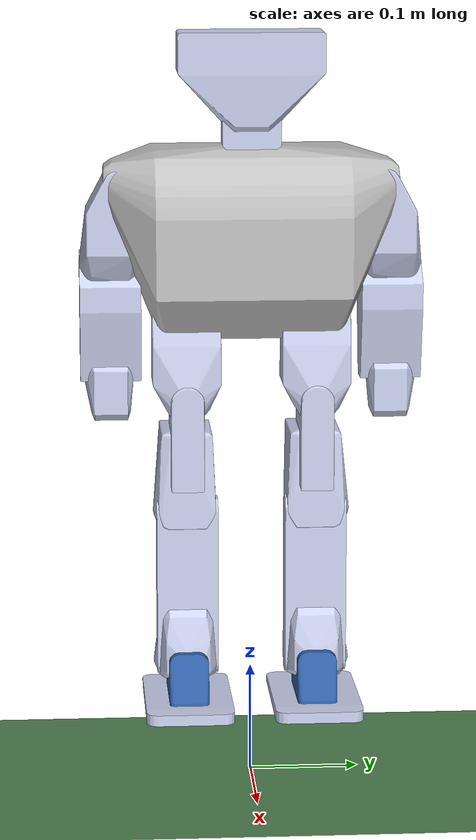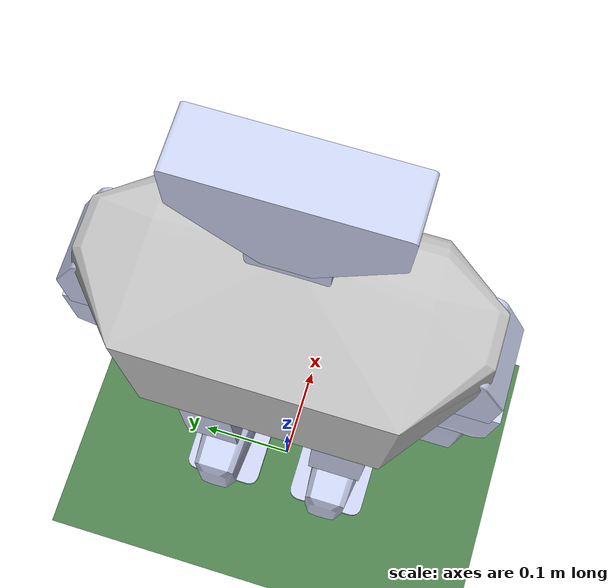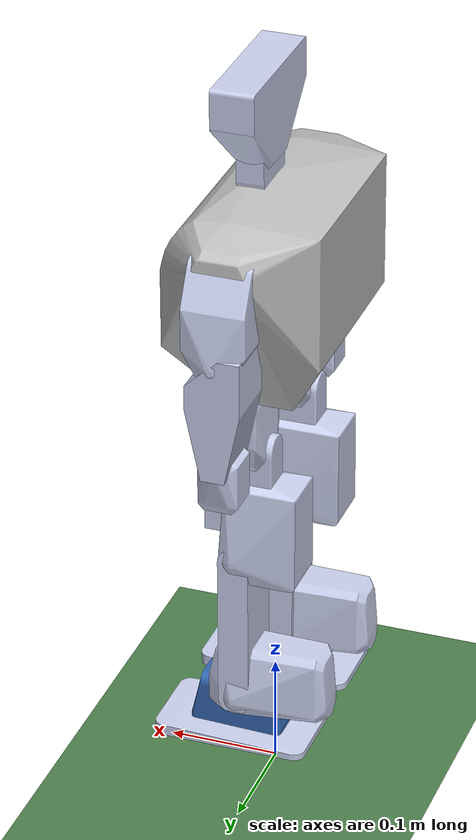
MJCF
<?xml version='1.0' encoding='utf-8'?>
<mujoco model="kubot26_pkgs">
  <compiler angle="radian" />
  <asset>
    <mesh name="base_link_collision" content_type="model/stl" file="/home/jeonghwan/kubot26_ws/src/kubot26_pkgs/meshes/collision/base_link_collision.STL" />
    <mesh name="L_Hip_pitch_collision" content_type="model/stl" file="/home/jeonghwan/kubot26_ws/src/kubot26_pkgs/meshes/collision/L_Hip_pitch_collision.STL" />
    <mesh name="L_Hip_roll_collision" content_type="model/stl" file="/home/jeonghwan/kubot26_ws/src/kubot26_pkgs/meshes/collision/L_Hip_roll_collision.STL" />
    <mesh name="L_Hip_yaw_collision" content_type="model/stl" file="/home/jeonghwan/kubot26_ws/src/kubot26_pkgs/meshes/collision/L_Hip_yaw_collision.STL" />
    <mesh name="L_Knee_pitch_collision" content_type="model/stl" file="/home/jeonghwan/kubot26_ws/src/kubot26_pkgs/meshes/collision/L_Knee_pitch_collision.STL" />
    <mesh name="L_Ankle_pitch_collision" content_type="model/stl" file="/home/jeonghwan/kubot26_ws/src/kubot26_pkgs/meshes/collision/L_Ankle_pitch_collision.STL" />
    <mesh name="L_Ankle_roll_collision" content_type="model/stl" file="/home/jeonghwan/kubot26_ws/src/kubot26_pkgs/meshes/collision/L_Ankle_roll_collision.STL" />
    <mesh name="L_Foot_collision" content_type="model/stl" file="/home/jeonghwan/kubot26_ws/src/kubot26_pkgs/meshes/collision/L_Foot_collision.STL" />
    <mesh name="R_Hip_pitch_collision" content_type="model/stl" file="/home/jeonghwan/kubot26_ws/src/kubot26_pkgs/meshes/collision/R_Hip_pitch_collision.STL" />
    <mesh name="R_Hip_roll_collision" content_type="model/stl" file="/home/jeonghwan/kubot26_ws/src/kubot26_pkgs/meshes/collision/R_Hip_roll_collision.STL" />
    <mesh name="R_Hip_yaw_collision" content_type="model/stl" file="/home/jeonghwan/kubot26_ws/src/kubot26_pkgs/meshes/collision/R_Hip_yaw_collision.STL" />
    <mesh name="R_Knee_pitch_collision" content_type="model/stl" file="/home/jeonghwan/kubot26_ws/src/kubot26_pkgs/meshes/collision/R_Knee_pitch_collision.STL" />
    <mesh name="R_Ankle_pitch_collision" content_type="model/stl" file="/home/jeonghwan/kubot26_ws/src/kubot26_pkgs/meshes/collision/R_Ankle_pitch_collision.STL" />
    <mesh name="R_Ankle_roll_collision" content_type="model/stl" file="/home/jeonghwan/kubot26_ws/src/kubot26_pkgs/meshes/collision/R_Ankle_roll_collision.STL" />
    <mesh name="R_Foot_collision" content_type="model/stl" file="/home/jeonghwan/kubot26_ws/src/kubot26_pkgs/meshes/collision/R_Foot_collision.STL" />
    <mesh name="L_Shoulder_roll_collision" content_type="model/stl" file="/home/jeonghwan/kubot26_ws/src/kubot26_pkgs/meshes/collision/L_Shoulder_roll_collision.STL" />
    <mesh name="L_Elbow_pitch_collision" content_type="model/stl" file="/home/jeonghwan/kubot26_ws/src/kubot26_pkgs/meshes/collision/L_Elbow_pitch_collision.STL" />
    <mesh name="L_Hand_pitch_collision" content_type="model/stl" file="/home/jeonghwan/kubot26_ws/src/kubot26_pkgs/meshes/collision/L_Hand_pitch_collision.STL" />
    <mesh name="R_Shoulder_roll_collision" content_type="model/stl" file="/home/jeonghwan/kubot26_ws/src/kubot26_pkgs/meshes/collision/R_Shoulder_roll_collision.STL" />
    <mesh name="R_Elbow_pitch_collision" content_type="model/stl" file="/home/jeonghwan/kubot26_ws/src/kubot26_pkgs/meshes/collision/R_Elbow_pitch_collision.STL" />
    <mesh name="R_Hand_pitch_collision" content_type="model/stl" file="/home/jeonghwan/kubot26_ws/src/kubot26_pkgs/meshes/collision/R_Hand_pitch_collision.STL" />
    <mesh name="Neck_yaw_collision" content_type="model/stl" file="/home/jeonghwan/kubot26_ws/src/kubot26_pkgs/meshes/collision/Neck_yaw_collision.STL" />
    <mesh name="Head_pitch_collision" content_type="model/stl" file="/home/jeonghwan/kubot26_ws/src/kubot26_pkgs/meshes/collision/Head_pitch_collision.STL" />
  </asset>
  <worldbody>
    <body name="base_link" pos="0 0 0.5">
      <freejoint name="root" />
      <inertial pos="-0.0010724 1.5417E-05 0.0049666" mass="2.308868" fullinertia="0.011887 0.006649 0.009457 0.000000 0.000223 -0.000002" />
      <geom pos="0.00048 1.9e-05 4e-05" quat="1 0 0 0" type="mesh" rgba="0.75294 0.75294 0.75294 1" mesh="base_link_collision" />
      <body name="L_Hip_pitch" pos="0.0084798 0.058519 -0.067335">
        <inertial pos="4.5899e-05 0.00015259 -0.052562" quat="0.92388 0 0.382683 0" mass="0.208" diaginertia="0.000501 0.0005 0.000499" />
        <joint name="L_Hip_pitch_joint" range="-1.5 0.15" actuatorfrcrange="-8.4 8.4" damping="0.5" frictionloss="0.1" axis="0 1 0" />
        <geom type="mesh" rgba="0.79216 0.81961 0.93333 1" mesh="L_Hip_pitch_collision" />
        <body name="L_Hip_roll" pos="0 0.0002 -0.0756">
          <inertial pos="0.0095362 2.8384e-08 -0.036432" quat="0.92388 0 0.382683 0" mass="0.03741" diaginertia="0.000507 0.0005 0.000493" />
          <joint name="L_Hip_roll_joint" range="-1.55 1.55" actuatorfrcrange="-8.4 8.4" damping="0.5" frictionloss="0.1" axis="1 0 0" />
          <geom type="mesh" rgba="0.79216 0.81961 0.93333 1" mesh="L_Hip_roll_collision" />
          <body name="L_Hip_yaw" pos="0.0001 0 -0.0531">
            <inertial pos="-0.019742 5.0279e-05 -0.026799" quat="0.922094 0.0574075 0.381944 0.023779" mass="0.35315" diaginertia="0.000508062 0.0005 0.000491938" />
            <joint name="L_Hip_yaw_joint" range="-1.6 1.6" actuatorfrcrange="-6 6" damping="0.5" frictionloss="0.1" />
            <geom type="mesh" rgba="0.79216 0.81961 0.93333 1" mesh="L_Hip_yaw_collision" />
            <body name="L_Knee_pitch" pos="0.0005 0 -0.0515">
              <inertial pos="0 0.0001 -0.069133" mass="0.04" diaginertia="0.0005 0.0005 0.0005" />
              <joint name="L_Knee_pitch_joint" range="-2.25 1.95" actuatorfrcrange="-8.4 8.4" damping="0.5" frictionloss="0.1" axis="0 1 0" />
              <geom type="mesh" rgba="0.79216 0.81961 0.93333 1" mesh="L_Knee_pitch_collision" />
              <body name="L_Ankle_pitch" pos="0 0.0001 -0.142">
                <inertial pos="-0.026062 5.2579e-05 0.015668" quat="0.918283 0.0420589 0.380365 0.101539" mass="0.383379" diaginertia="0.000506317 0.000499683 0.000494" />
                <joint name="L_Ankle_pitch_joint" range="-1.55 1.55" actuatorfrcrange="-8.4 8.4" damping="0.5" frictionloss="0.1" axis="0 1 0" />
                <geom type="mesh" rgba="0.79216 0.81961 0.93333 1" mesh="L_Ankle_pitch_collision" />
                <body name="L_Ankle_roll" pos="-0.0562 0 0">
                  <inertial pos="0.0597291 0 -0.0318913" quat="0.996951 0 -0.0780304 0" mass="0.11111" diaginertia="0.00101292 0.00101269 0.000999764" />
                  <joint name="L_Ankle_roll_joint" range="-1.55 1.55" actuatorfrcrange="-8.4 8.4" damping="0.5" frictionloss="0.1" axis="-1 0 0" />
                  <geom type="mesh" rgba="0.2 0.4 0.69804 1" mesh="L_Ankle_roll_collision" />
                  <geom pos="0.0557 -0.0001 -0.042" quat="1 0 0 0" type="mesh" rgba="0.79216 0.81961 0.93333 1" mesh="L_Foot_collision" />
                </body>
              </body>
            </body>
          </body>
        </body>
      </body>
      <body name="R_Hip_pitch" pos="0.0084798 -0.058481 -0.067335">
        <inertial pos="4.5899e-05 -4.7411e-05 -0.052562" quat="0.92388 0 0.382683 0" mass="0.208" diaginertia="0.000501 0.0005 0.000499" />
        <joint name="R_Hip_pitch_joint" range="-0.15 1.5" actuatorfrcrange="-8.4 8.4" damping="0.5" frictionloss="0.1" axis="0 -1 0" />
        <geom type="mesh" rgba="0.79216 0.81961 0.93333 1" mesh="R_Hip_pitch_collision" />
        <body name="R_Hip_roll" pos="0 0 -0.0756">
          <inertial pos="0.0095362 2.8384e-08 -0.036432" quat="0.92388 0 0.382683 0" mass="0.03741" diaginertia="0.000507 0.0005 0.000493" />
          <joint name="R_Hip_roll_joint" range="-1.55 1.55" actuatorfrcrange="-8.4 8.4" damping="0.5" frictionloss="0.1" axis="1 0 0" />
          <geom type="mesh" rgba="0.79216 0.81961 0.93333 1" mesh="R_Hip_roll_collision" />
          <body name="R_Hip_yaw" pos="0.0001 0 -0.0531">
            <inertial pos="-0.019742 -5.0317e-05 -0.026802" quat="0.922094 -0.0574075 0.381944 -0.023779" mass="0.35315" diaginertia="0.000508062 0.0005 0.000491938" />
            <joint name="R_Hip_yaw_joint" range="-1.6 1.6" actuatorfrcrange="-6 6" damping="0.5" frictionloss="0.1" />
            <geom type="mesh" rgba="0.79216 0.81961 0.93333 1" mesh="R_Hip_yaw_collision" />
            <body name="R_Knee_pitch" pos="0.0005 0 -0.0515">
              <inertial pos="0 -0.0001 -0.069133" mass="0.04" diaginertia="0.0005 0.0005 0.0005" />
              <joint name="R_Knee_pitch_joint" range="-2.25 1.95" actuatorfrcrange="-8.4 8.4" damping="0.5" frictionloss="0.1" axis="0 -1 0" />
              <geom type="mesh" rgba="0.79216 0.81961 0.93333 1" mesh="R_Knee_pitch_collision" />
              <body name="R_Ankle_pitch" pos="0 -0.0001 -0.142">
                <inertial pos="-0.026066 -5.5883e-05 0.015668" quat="0.918283 -0.0420589 0.380365 -0.101539" mass="0.383379" diaginertia="0.000506317 0.000499683 0.000494" />
                <joint name="R_Ankle_pitch_joint" range="-1.55 1.55" actuatorfrcrange="-8.4 8.4" damping="0.5" frictionloss="0.1" axis="0 -1 0" />
                <geom type="mesh" rgba="0.79216 0.81961 0.93333 1" mesh="R_Ankle_pitch_collision" />
                <body name="R_Ankle_roll" pos="-0.0562 0 0">
                  <inertial pos="0.0597291 0 -0.0318913" quat="0.996951 0 -0.0780304 0" mass="0.11111" diaginertia="0.00101292 0.00101269 0.000999764" />
                  <joint name="R_Ankle_roll_joint" range="-1.55 1.55" actuatorfrcrange="-8.4 8.4" damping="0.5" frictionloss="0.1" axis="-1 0 0" />
                  <geom type="mesh" rgba="0.2 0.4 0.69804 1" mesh="R_Ankle_roll_collision" />
                  <geom pos="0.0557 0.0001 -0.042" quat="1 0 0 0" type="mesh" rgba="0.79216 0.81961 0.93333 1" mesh="R_Foot_collision" />
                </body>
              </body>
            </body>
          </body>
        </body>
      </body>
      <body name="L_Shoulder_roll" pos="0.0029798 0.11877 0.052965">
        <inertial pos="-1.0078e-05 0.0072889 -0.05039" quat="0.653281 -0.270598 0.270598 0.653281" mass="0.1606" diaginertia="0.000503 0.0005 0.000497" />
        <joint name="L_Shoulder_roll_joint" range="0 3.2" actuatorfrcrange="-6 6" damping="0.5" frictionloss="0.1" axis="1 0 0" />
        <geom type="mesh" rgba="0.79216 0.81961 0.93333 1" mesh="L_Shoulder_roll_collision" />
        <body name="L_Elbow_pitch" pos="0 0.008 -0.075687">
          <inertial pos="-0.003143 0.0001 -0.041627" quat="0.92388 0 0.382683 0" mass="0.042" diaginertia="0.000504 0.0005 0.000496" />
          <joint name="L_Elbow_pitch_joint" range="-2.61 2.61" actuatorfrcrange="-6 6" damping="0.5" frictionloss="0.1" axis="0 1 0" />
          <geom type="mesh" rgba="0.79216 0.81961 0.93333 1" mesh="L_Elbow_pitch_collision" />
          <body name="L_Hand_pitch" pos="-0.0013072 -0.000375 -0.10058">
            <inertial pos="-1.9589e-06 7.6453e-05 -0.01116" mass="0.081" diaginertia="0.0005 0.0005 0.0005" />
            <joint name="L_Hand_pitch_joint" range="-2.61 2.61" actuatorfrcrange="-2.5 2.5" damping="0.5" frictionloss="0.1" axis="0 1 0" />
            <geom type="mesh" rgba="0.79216 0.81961 0.93333 1" mesh="L_Hand_pitch_collision" />
          </body>
        </body>
      </body>
      <body name="R_Shoulder_roll" pos="0.0029798 -0.11873 0.052965">
        <inertial pos="0.00013985 -0.0072889 -0.05039" quat="0.653281 0.270598 -0.270598 0.653281" mass="0.1606" diaginertia="0.000503 0.0005 0.000497" />
        <joint name="R_Shoulder_roll_joint" range="-3.2 0" actuatorfrcrange="-6 6" damping="0.5" frictionloss="0.1" axis="1 0 0" />
        <geom type="mesh" rgba="0.79216 0.81961 0.93333 1" mesh="R_Shoulder_roll_collision" />
        <body name="R_Elbow_pitch" pos="0.0001 -0.008 -0.075687">
          <inertial pos="-0.003143 -0.0001 -0.041627" quat="0.92388 0 0.382683 0" mass="0.042" diaginertia="0.000504 0.0005 0.000496" />
          <joint name="R_Elbow_pitch_joint" range="-2.61 2.61" actuatorfrcrange="-6 6" damping="0.5" frictionloss="0.1" axis="0 -1 0" />
          <geom type="mesh" rgba="0.79216 0.81961 0.93333 1" mesh="R_Elbow_pitch_collision" />
          <body name="R_Hand_pitch" pos="-0.0013072 -0.0001 -0.10058">
            <inertial pos="1.9589e-06 -7.6453e-05 -0.01116" mass="0.081" diaginertia="0.0005 0.0005 0.0005" />
            <joint name="R_Hand_pitch_joint" range="-2.61 2.61" actuatorfrcrange="-2.5 2.5" damping="0.5" frictionloss="0.1" axis="0 -1 0" />
            <geom type="mesh" rgba="0.79216 0.81961 0.93333 1" mesh="R_Hand_pitch_collision" />
          </body>
        </body>
      </body>
      <body name="Neck_yaw" pos="0.01348 1.9232e-05 0.063915">
        <inertial pos="0 0 0.031083" mass="0.03844" diaginertia="0.0005 0.0005 0.0005" />
        <joint name="Neck_yaw_joint" range="-2.61 2.61" actuatorfrcrange="-2.5 2.5" damping="0.5" frictionloss="0.1" />
        <geom type="mesh" rgba="0.79216 0.81961 0.93333 1" mesh="Neck_yaw_collision" />
        <body name="Head_pitch" pos="0 -0.000475 0.04825">
          <inertial pos="0.0014333 -0.00024179 0.047365" quat="0.991975 0 -0.126435 0" mass="0.31815" diaginertia="0.000519296 0.0005 0.000498704" />
          <joint name="Head_pitch_joint" range="-1.65 2" actuatorfrcrange="-2.5 2.5" damping="0.5" frictionloss="0.1" axis="0 1 0" />
          <geom type="mesh" rgba="0.79216 0.81961 0.93333 1" mesh="Head_pitch_collision" />
        </body>
      </body>
    </body>
    <geom name="floor" type="plane" size="20 20 0.1" rgba="0.3 0.5 0.3 1" condim="3" />
    <light pos="0 0 3" dir="0 0 -1" diffuse="0.8 0.8 0.8" />
  </worldbody>
  <contact>
    <exclude body1="base_link" body2="L_Elbow_pitch" />
    <exclude body1="base_link" body2="R_Elbow_pitch" />
    <exclude body1="L_Knee_pitch" body2="L_Ankle_roll" />
    <exclude body1="R_Knee_pitch" body2="R_Ankle_roll" />
  </contact>
  <actuator>
    <position name="act_L_Hip_pitch_joint" joint="L_Hip_pitch_joint" kp="500" forcerange="-8.4 8.4" />
    <position name="act_L_Hip_roll_joint" joint="L_Hip_roll_joint" kp="500" forcerange="-8.4 8.4" />
    <position name="act_L_Hip_yaw_joint" joint="L_Hip_yaw_joint" kp="287" forcerange="-6.0 6.0" />
    <position name="act_L_Knee_pitch_joint" joint="L_Knee_pitch_joint" kp="500" forcerange="-8.4 8.4" />
    <position name="act_L_Ankle_pitch_joint" joint="L_Ankle_pitch_joint" kp="500" forcerange="-8.4 8.4" />
    <position name="act_L_Ankle_roll_joint" joint="L_Ankle_roll_joint" kp="500" forcerange="-8.4 8.4" />
    <position name="act_R_Hip_pitch_joint" joint="R_Hip_pitch_joint" kp="500" forcerange="-8.4 8.4" />
    <position name="act_R_Hip_roll_joint" joint="R_Hip_roll_joint" kp="500" forcerange="-8.4 8.4" />
    <position name="act_R_Hip_yaw_joint" joint="R_Hip_yaw_joint" kp="287" forcerange="-6.0 6.0" />
    <position name="act_R_Knee_pitch_joint" joint="R_Knee_pitch_joint" kp="500" forcerange="-8.4 8.4" />
    <position name="act_R_Ankle_pitch_joint" joint="R_Ankle_pitch_joint" kp="500" forcerange="-8.4 8.4" />
    <position name="act_R_Ankle_roll_joint" joint="R_Ankle_roll_joint" kp="500" forcerange="-8.4 8.4" />
    <position name="act_L_Shoulder_roll_joint" joint="L_Shoulder_roll_joint" kp="120" forcerange="-6.0 6.0" />
    <position name="act_L_Elbow_pitch_joint" joint="L_Elbow_pitch_joint" kp="50" forcerange="-6.0 6.0" />
    <position name="act_L_Hand_pitch_joint" joint="L_Hand_pitch_joint" kp="30" forcerange="-2.5 2.5" />
    <position name="act_R_Shoulder_roll_joint" joint="R_Shoulder_roll_joint" kp="120" forcerange="-6.0 6.0" />
    <position name="act_R_Elbow_pitch_joint" joint="R_Elbow_pitch_joint" kp="50" forcerange="-6.0 6.0" />
    <position name="act_R_Hand_pitch_joint" joint="R_Hand_pitch_joint" kp="30" forcerange="-2.5 2.5" />
    <position name="act_Neck_yaw_joint" joint="Neck_yaw_joint" kp="30" forcerange="-2.5 2.5" />
    <position name="act_Head_pitch_joint" joint="Head_pitch_joint" kp="30" forcerange="-2.5 2.5" />
  </actuator>
</mujoco>
